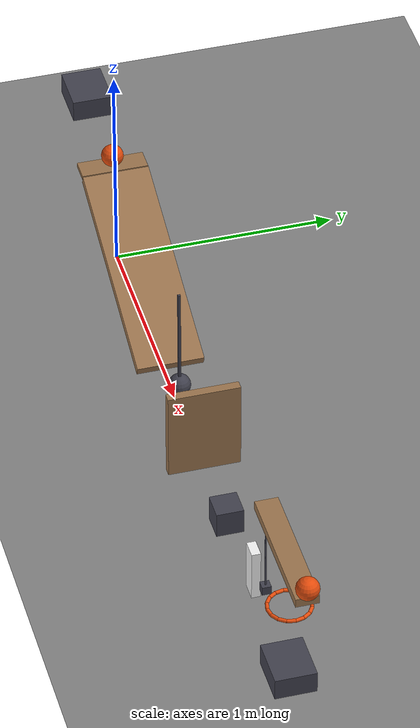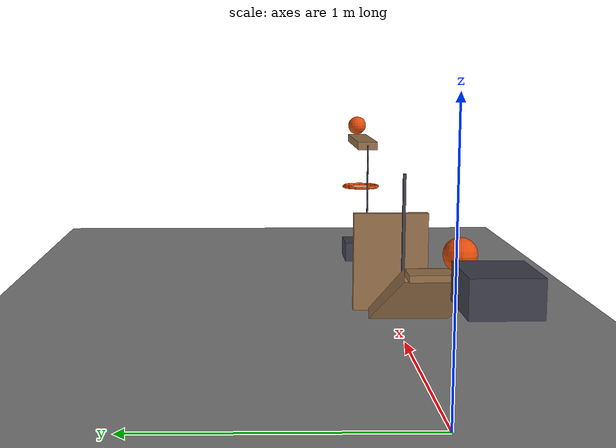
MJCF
<mujoco model="spring_cart_chain_with_corrected_hinge_anchors">
  <compiler angle="radian"/>
  <option timestep="0.002"/>
  <worldbody>
    <geom name="floor" type="plane" size="8 8 0.1" friction="0.68 0 0"/>
    <body name="ramp1">
      <geom name="ramp1" type="box" pos="0.469847 0 0.302216" size="0.5 0.15 0.02" euler="0 0.349066 0" friction="0.68 0 0" solref="0.01 0.690107" rgba="0.6 0.45 0.3 1"/>
    </body>
    <body name="ball1 seat">
      <geom name="ball1 seat" type="box" pos="-0.05 0 0.48202" size="0.05 0.15 0.01" friction="0.68 0 0" solref="0.01 0.690107" rgba="0.6 0.45 0.3 1"/>
    </body>
    <body name="ball1" pos="-0.05 0 0.54202">
      <freejoint/>
      <geom name="ball1" type="sphere" pos="0 0 0" size="0.05" mass="0.2" condim="6" friction="0.68 0 0" solref="0.01 0.690107" rgba="0.9 0.3 0.05 1"/>
    </body>
    <body name="cart1" pos="-0.51 0 0.54202">
      <joint name="cart1_track" type="slide" pos="0 0 0" axis="1 0 0" limited="true" range="-0.2 0.3" stiffness="18" springref="0" damping="0.2"/>
      <geom name="cart1" type="box" pos="0 0 0" size="0.11 0.09 0.05" mass="0.5" friction="0.68 0 0" solref="0.01 0.690107" rgba="0.25 0.25 0.3 1"/>
    </body>
    <body name="pendulum1" pos="1.08969 0 0.65">
      <joint name="pendulum1_hinge" type="hinge" pos="0 0 0" axis="0 1 0" limited="true" range="-0.698132 0" damping="0.04"/>
      <geom name="pendulum1" type="box" pos="0 0 -0.25" size="0.006 0.006 0.25" mass="0.05" friction="0.68 0 0" solref="0.01 0.690107" rgba="0.25 0.25 0.3 1"/>
      <geom name="pendulum1 bob" type="sphere" pos="0 0 -0.5" size="0.05" mass="0.3" friction="0.68 0 0" solref="0.01 0.690107" rgba="0.25 0.25 0.3 1"/>
    </body>
    <body name="door1" pos="1.48109 -0.16 0.23">
      <joint name="door1_hinge" type="hinge" pos="0 0 0" axis="0 0 1" limited="true" range="-1.22173 0" damping="0.04"/>
      <geom name="door1" type="box" pos="0 0.16 0" size="0.02 0.16 0.21" mass="0.45" friction="0.68 0 0" solref="0.01 0.690107" rgba="0.6 0.45 0.3 1"/>
    </body>
    <body name="block1" pos="1.84863 0 0.06">
      <freejoint/>
      <geom name="block1" type="box" pos="0 0 0" size="0.06 0.06 0.06" mass="0.35" friction="0.68 0 0" solref="0.01 0.690107" rgba="0.25 0.25 0.3 1"/>
    </body>
    <body name="domino1" pos="2.26863 0 0.12">
      <freejoint/>
      <geom name="domino1" type="box" pos="0 0 0" size="0.04 0.02 0.12" mass="0.25" friction="0.68 0 0" solref="0.01 0.690107" rgba="0.95 0.95 0.95 1"/>
    </body>
    <body name="lever1" pos="2.74863 -0.05 0.65">
      <joint name="lever1_hinge" type="hinge" pos="0 0 0" axis="0 1 0" limited="true" range="-0.785398 0" damping="0.04"/>
      <geom name="lever1" type="box" pos="0 0.05 0" size="0.3 0.05 0.02" mass="0.498" friction="0.68 0 0" solref="0.01 0.690107" rgba="0.6 0.45 0.3 1"/>
      <geom name="lever drop link" type="capsule" size="0.004" fromto="-0.3 0.05 0 -0.3 0.05 -0.47" mass="0.001" friction="0.68 0 0" solref="0.01 0.690107" rgba="0.25 0.25 0.3 1"/>
      <geom name="lever strike pad" type="box" pos="-0.3 0.05 -0.47" size="0.02 0.02 0.02" mass="0.001" friction="0.68 0 0" solref="0.01 0.690107" rgba="0.25 0.25 0.3 1"/>
    </body>
    <body name="ball2" pos="3.04863 0 0.72">
      <freejoint/>
      <geom name="ball2" type="sphere" pos="0 0 0" size="0.05" mass="0.2" condim="6" friction="0.68 0 0" solref="0.01 0.690107" rgba="0.9 0.3 0.05 1"/>
    </body>
    <body name="ring1">
      <geom name="ring1_00" type="capsule" size="0.008" fromto="2.89063 0 0.4 2.88363 0.0352069 0.4" friction="0.68 0 0" solref="0.01 0.690107" rgba="0.9 0.3 0.05 1"/>
      <geom name="ring1_01" type="capsule" size="0.008" fromto="2.88363 0.0352069 0.4 2.86368 0.0650538 0.4" friction="0.68 0 0" solref="0.01 0.690107" rgba="0.9 0.3 0.05 1"/>
      <geom name="ring1_02" type="capsule" size="0.008" fromto="2.86368 0.0650538 0.4 2.83384 0.0849969 0.4" friction="0.68 0 0" solref="0.01 0.690107" rgba="0.9 0.3 0.05 1"/>
      <geom name="ring1_03" type="capsule" size="0.008" fromto="2.83384 0.0849969 0.4 2.79863 0.092 0.4" friction="0.68 0 0" solref="0.01 0.690107" rgba="0.9 0.3 0.05 1"/>
      <geom name="ring1_04" type="capsule" size="0.008" fromto="2.79863 0.092 0.4 2.76342 0.0849969 0.4" friction="0.68 0 0" solref="0.01 0.690107" rgba="0.9 0.3 0.05 1"/>
      <geom name="ring1_05" type="capsule" size="0.008" fromto="2.76342 0.0849969 0.4 2.73358 0.0650538 0.4" friction="0.68 0 0" solref="0.01 0.690107" rgba="0.9 0.3 0.05 1"/>
      <geom name="ring1_06" type="capsule" size="0.008" fromto="2.73358 0.0650538 0.4 2.71363 0.0352069 0.4" friction="0.68 0 0" solref="0.01 0.690107" rgba="0.9 0.3 0.05 1"/>
      <geom name="ring1_07" type="capsule" size="0.008" fromto="2.71363 0.0352069 0.4 2.70663 1.12668e-17 0.4" friction="0.68 0 0" solref="0.01 0.690107" rgba="0.9 0.3 0.05 1"/>
      <geom name="ring1_08" type="capsule" size="0.008" fromto="2.70663 1.12668e-17 0.4 2.71363 -0.0352069 0.4" friction="0.68 0 0" solref="0.01 0.690107" rgba="0.9 0.3 0.05 1"/>
      <geom name="ring1_09" type="capsule" size="0.008" fromto="2.71363 -0.0352069 0.4 2.73358 -0.0650538 0.4" friction="0.68 0 0" solref="0.01 0.690107" rgba="0.9 0.3 0.05 1"/>
      <geom name="ring1_10" type="capsule" size="0.008" fromto="2.73358 -0.0650538 0.4 2.76342 -0.0849969 0.4" friction="0.68 0 0" solref="0.01 0.690107" rgba="0.9 0.3 0.05 1"/>
      <geom name="ring1_11" type="capsule" size="0.008" fromto="2.76342 -0.0849969 0.4 2.79863 -0.092 0.4" friction="0.68 0 0" solref="0.01 0.690107" rgba="0.9 0.3 0.05 1"/>
      <geom name="ring1_12" type="capsule" size="0.008" fromto="2.79863 -0.092 0.4 2.83384 -0.0849969 0.4" friction="0.68 0 0" solref="0.01 0.690107" rgba="0.9 0.3 0.05 1"/>
      <geom name="ring1_13" type="capsule" size="0.008" fromto="2.83384 -0.0849969 0.4 2.86368 -0.0650538 0.4" friction="0.68 0 0" solref="0.01 0.690107" rgba="0.9 0.3 0.05 1"/>
      <geom name="ring1_14" type="capsule" size="0.008" fromto="2.86368 -0.0650538 0.4 2.88363 -0.0352069 0.4" friction="0.68 0 0" solref="0.01 0.690107" rgba="0.9 0.3 0.05 1"/>
      <geom name="ring1_15" type="capsule" size="0.008" fromto="2.88363 -0.0352069 0.4 2.89063 -2.25335e-17 0.4" friction="0.68 0 0" solref="0.01 0.690107" rgba="0.9 0.3 0.05 1"/>
    </body>
    <body name="cart2" pos="2.79863 0 0.05">
      <joint name="cart2_track" type="slide" pos="0 0 0" axis="1 0 0" limited="true" range="0 0.5" damping="0.2"/>
      <geom name="cart2" type="box" pos="0 0 0" size="0.11 0.09 0.05" mass="0.5" friction="0.68 0 0" solref="0.01 0.690107" rgba="0.25 0.25 0.3 1"/>
    </body>
  </worldbody>
  <keyframe>
    <key name="start" qpos="-0.05 0 0.54202 1 0 0 0 -0.2 0 0 1.84863 0 0.06 1 0 0 0 2.26863 0 0.12 1 0 0 0 0 3.04863 0 0.72 1 0 0 0 0" qvel="0 0 0 0 0 0 0 0 0 0 0 0 0 0 0 0 0 0 0 0 0 0 0 0 0 0 0 0 0"/>
  </keyframe>
</mujoco>
